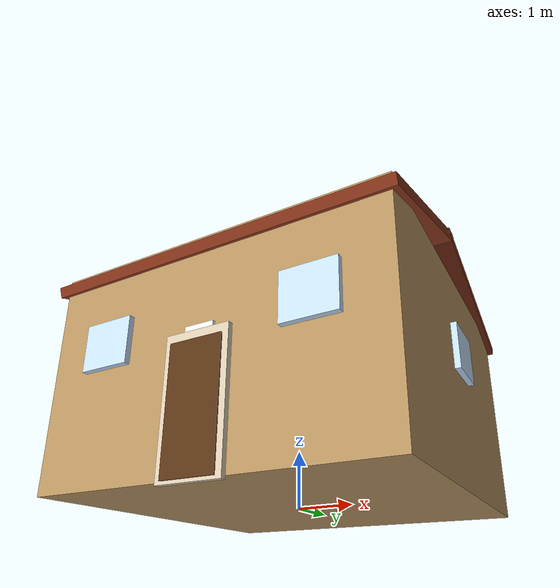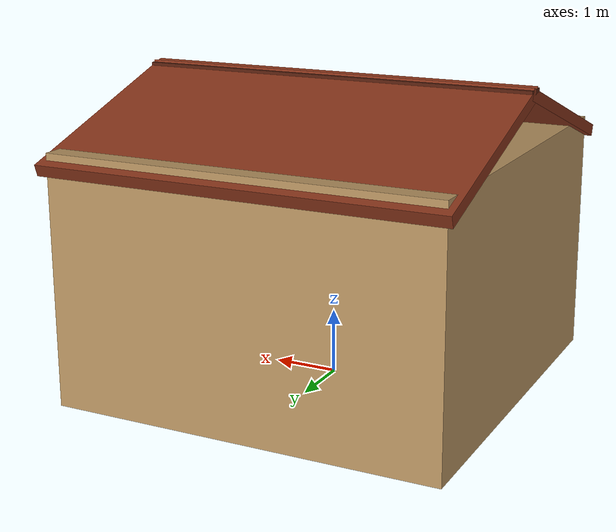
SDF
<?xml version="1.0" ?>
<!-- House Type A: 6x6m brown residential, pitched terracotta roof, front faces -Y -->
<sdf version="1.6">
  <model name="house_type_a">
    <static>true</static>
    <link name="link">

      <collision name="col">
        <pose>0 0 2.25 0 0 0</pose>
        <geometry><box><size>6 6 4.5</size></box></geometry>
      </collision>

      <!-- Main walls 6x6x3.8m -->
      <visual name="walls">
        <pose>0 0 1.9 0 0 0</pose>
        <geometry><box><size>6 6 3.8</size></box></geometry>
        <material>
          <ambient>0.72 0.58 0.38 1</ambient>
          <diffuse>0.72 0.58 0.38 1</diffuse>
          <specular>0.05 0.05 0.05 1</specular>
        </material>
      </visual>

      <!-- Roof: angle = atan(1/3) = 0.322 rad; center Y=±1.5, Z=4.1 -->
      <visual name="roof_left">
        <pose>0 1.5 4.1 -0.322 0 0</pose>
        <geometry><box><size>6.2 3.4 0.18</size></box></geometry>
        <material>
          <ambient>0.52 0.20 0.10 1</ambient>
          <diffuse>0.52 0.20 0.10 1</diffuse>
        </material>
      </visual>
      <visual name="roof_right">
        <pose>0 -1.5 4.1 0.322 0 0</pose>
        <geometry><box><size>6.2 3.4 0.18</size></box></geometry>
        <material>
          <ambient>0.52 0.20 0.10 1</ambient>
          <diffuse>0.52 0.20 0.10 1</diffuse>
        </material>
      </visual>
      <visual name="ridge">
        <pose>0 0 4.62 0 0 0</pose>
        <geometry><box><size>6.2 0.32 0.14</size></box></geometry>
        <material>
          <ambient>0.35 0.13 0.06 1</ambient>
          <diffuse>0.35 0.13 0.06 1</diffuse>
        </material>
      </visual>

      <!-- Door on front (-Y) face; face is at Y=-3.0 -->
      <visual name="door">
        <pose>0 -3.06 1.0 0 0 0</pose>
        <geometry><box><size>0.9 0.12 2.0</size></box></geometry>
        <material>
          <ambient>0.35 0.20 0.08 1</ambient>
          <diffuse>0.35 0.20 0.08 1</diffuse>
        </material>
      </visual>
      <visual name="door_frame">
        <pose>0 -3.045 1.05 0 0 0</pose>
        <geometry><box><size>1.1 0.09 2.2</size></box></geometry>
        <material>
          <ambient>0.86 0.80 0.70 1</ambient>
          <diffuse>0.86 0.80 0.70 1</diffuse>
        </material>
      </visual>

      <visual name="win_front_left">
        <pose>-1.8 -3.06 2.3 0 0 0</pose>
        <geometry><box><size>0.9 0.1 0.8</size></box></geometry>
        <material>
          <ambient>0.78 0.88 1.0 1</ambient><diffuse>0.78 0.88 1.0 1</diffuse>
          <specular>0.5 0.5 0.5 1</specular>
        </material>
      </visual>
      <visual name="win_front_right">
        <pose>1.8 -3.06 2.3 0 0 0</pose>
        <geometry><box><size>0.9 0.1 0.8</size></box></geometry>
        <material>
          <ambient>0.78 0.88 1.0 1</ambient><diffuse>0.78 0.88 1.0 1</diffuse>
          <specular>0.5 0.5 0.5 1</specular>
        </material>
      </visual>
      <visual name="win_side">
        <pose>3.06 0 2.3 0 0 0</pose>
        <geometry><box><size>0.1 0.9 0.8</size></box></geometry>
        <material>
          <ambient>0.78 0.88 1.0 1</ambient><diffuse>0.78 0.88 1.0 1</diffuse>
          <specular>0.5 0.5 0.5 1</specular>
        </material>
      </visual>

      <!-- QR placeholder: 0.5x0.5m white panel on front wall at 2m height -->
      <visual name="qr_code">
        <pose>0 -3.035 2.0 0 0 0</pose>
        <geometry><box><size>0.5 0.05 0.5</size></box></geometry>
        <material><ambient>1 1 1 1</ambient><diffuse>1 1 1 1</diffuse></material>
      </visual>

    </link>
  </model>
</sdf>
